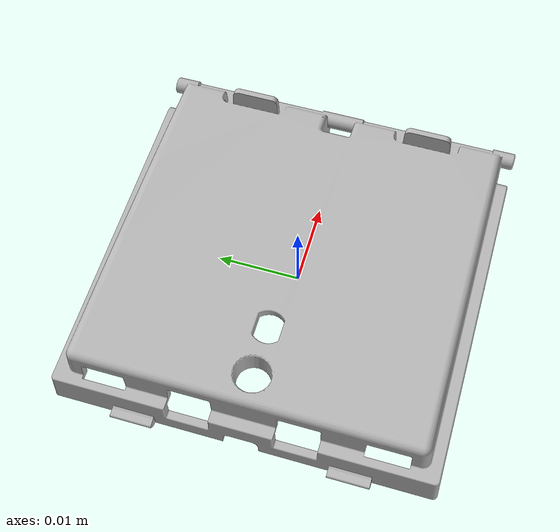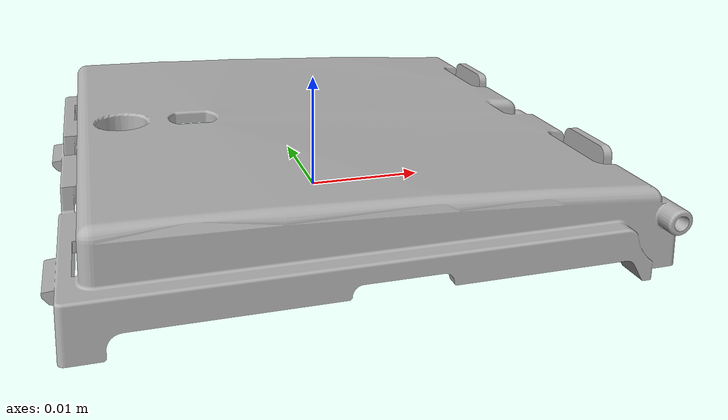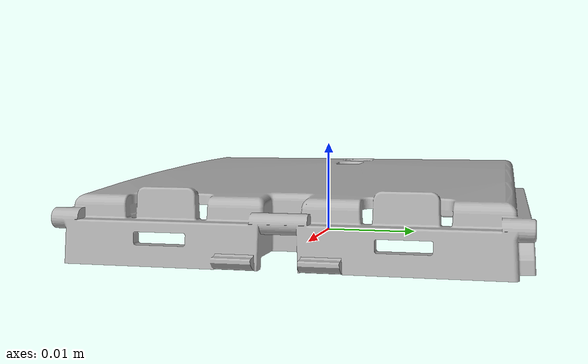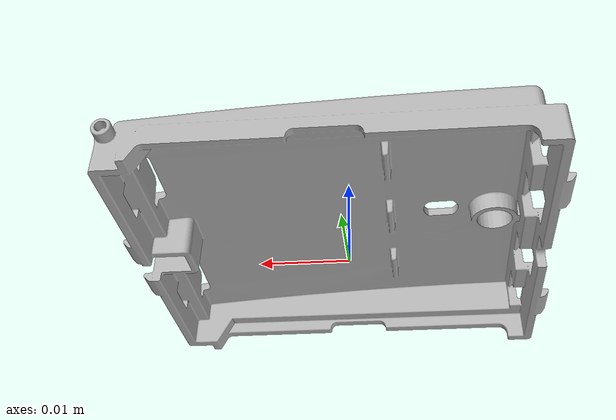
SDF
<?xml version="1.0" ?>
<sdf version="1.5">

    <!-- A global light source -->

<model name="housing_switch">
  <!-- Give the base link a unique name -->
  <link name="housing_switch">

    <!-- Offset the base by half the lenght of the cylinder -->
    <pose>0 0 0 0 0 0</pose>

    <collision name="housing_switch">
	<pose>0 0 0 0 0 0</pose>
      <geometry>
    <mesh>
      <uri>model://house_switch/meshes/housing_switch.dae </uri>
    </mesh>
      </geometry>
    </collision>

<visual name="housing_switch_visual">
  <!-- Offset the visual by have the base's height. We are not rotating
       mesh since symmetrical -->
  <pose>0 0 0 0 0 0</pose>
  <geometry>
    <mesh>
      <uri>model://house_switch/meshes/housing_switch.dae </uri>
    </mesh>
  </geometry>
</visual>
 </link>
<static>true</static>
</model>
</sdf>
